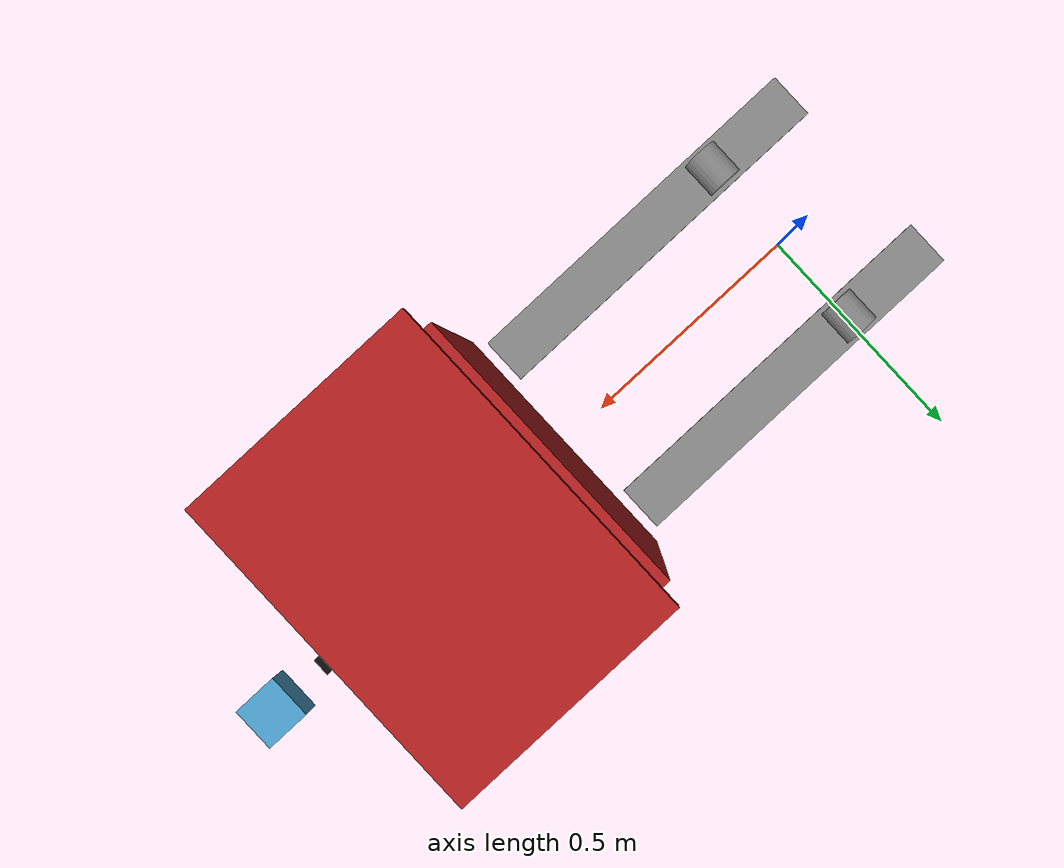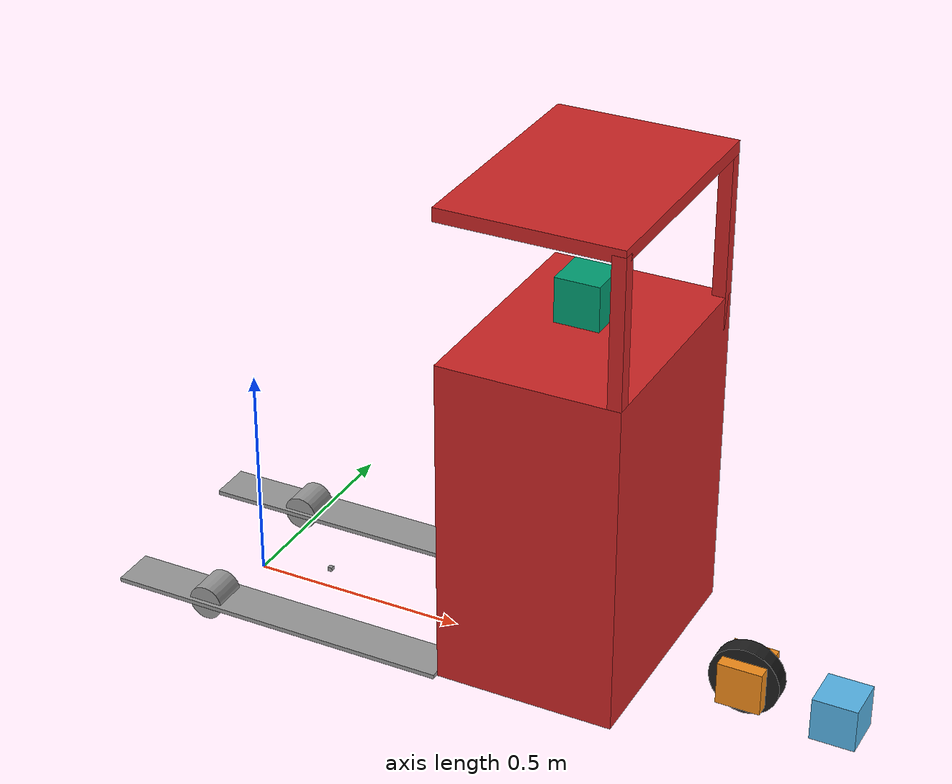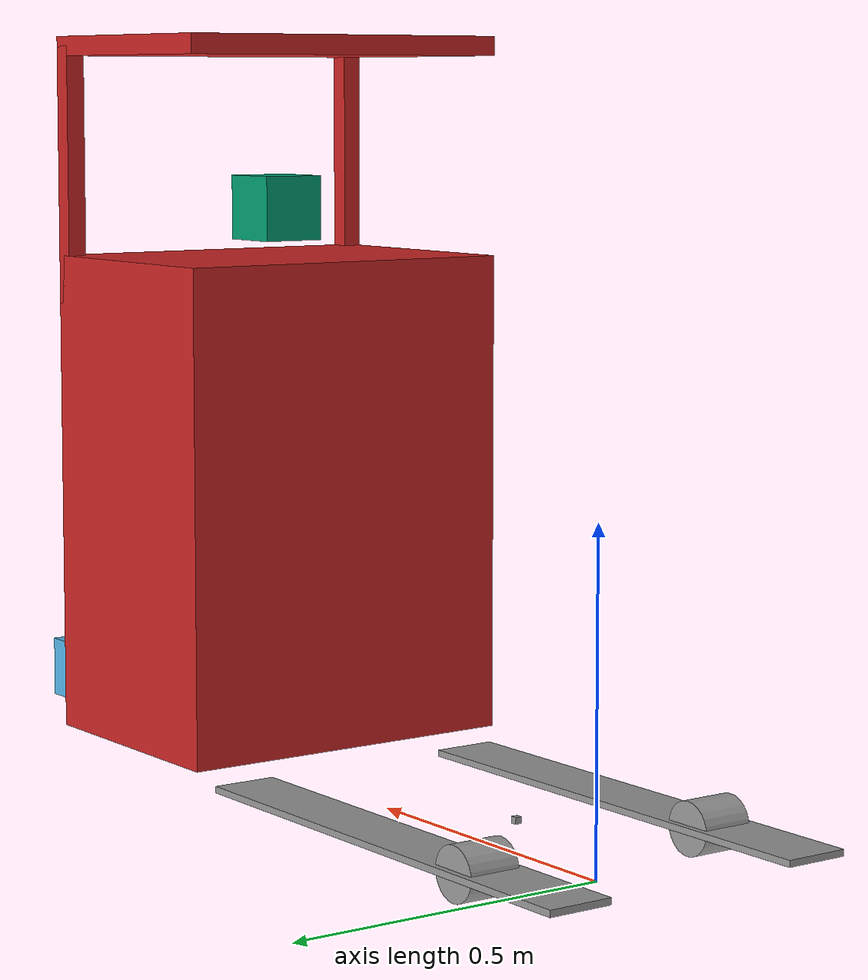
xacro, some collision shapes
<?xml version="1.0"?>
<robot name="cititruck" xmlns:xacro="http://ros.org/wiki/xacro">

    <xacro:arg name="tf_prefix" default="robot_xacro_default"/>
    <xacro:arg name="velodyne" default="false"/>
    <xacro:arg name="kinect2" default="false"/>
    <xacro:arg name="kinect1" default="false"/> <!-- deprecated -->

    <!-- Import all Gazebo-customization elements, including Gazebo colors -->
    <xacro:include filename="$(find cititruck_description)/urdf/cititruck.gazebo"/>

    <!-- Import Rviz colors -->
    <xacro:include filename="$(find cititruck_description)/urdf/materials.xacro"/>

    <xacro:property name="forks_pidP" value="2000"/>
    <xacro:property name="forks_pidI" value="0"/>
    <xacro:property name="forks_pidD" value="10"/>
    <xacro:property name="forks_low" value="0.08"/>
    <xacro:property name="forks_high" value="0.2"/>
    <xacro:property name="forks_maxeffort" value="1000"/>

    <!-- base_footprint is a fictitious link(frame) that is on the ground right below base_link origin, navigation stack dedpends on this frame and KDL needs a root link without any intertia -->
    <link name="base_footprint"/>
    <joint name="base_footprint_joint" type="fixed">
        <origin xyz="0 0 0.050" rpy="0 0 0"/>
        <child link="base_link"/>
        <parent link="base_footprint"/>
    </joint>

    <!-- Base Link -->
    <link name="base_link">
        <inertial>
            <mass value="20"/>
            <inertia ixx="1" ixy="0" ixz="0" iyy="1" iyz="0" izz="1"/>
            <origin/>
        </inertial>
        <collision>
            <origin xyz="0.8 0 0.1" rpy="0 0 0"/>
            <geometry>
                <box size="0.4 0.55 0.005"/>
            </geometry>
        </collision>

        <visual>
            <origin xyz="0.8 0 0.4" rpy="0 0 0"/>
            <geometry>
                <box size="0.4 0.55 0.75"/>
            </geometry>
            <material name="red"/>
        </visual>

        <!-- Top shelf -->
        <visual>
            <origin xyz="0.8 0 1.1" rpy="0 0 0" />
            <geometry>
                <box size="0.4 0.55 0.03" />
            </geometry>
            <material name="red"/>
        </visual>
        <visual>
            <origin xyz="0.985 0.26 0.9" rpy="0 0 0" />
            <geometry>
                <box size="0.03 0.03 0.4" />
            </geometry>
            <material name="red"/>
        </visual>
        <visual>
            <origin xyz="0.985 -0.26 0.9" rpy="0 0 0" />
            <geometry>
                <box size="0.03 0.03 0.4" />
            </geometry>
            <material name="red"/>
        </visual>

    </link>

    <!-- Forks -->

    <link name="left_fork">
        <inertial>
            <mass value="1"/>
            <origin xyz="0 0 0.0"/>
            <inertia ixx="0.01" ixy="0.0" ixz="0.0" iyy="0.01" iyz="0.0" izz="0.01"/>
        </inertial>
        <visual>
            <origin xyz="0 0 0.0" rpy="0 0 0"/>
            <geometry>
                <box size="0.8 0.1 0.01"/>
            </geometry>
            <material name="grey"/>
        </visual>
        <collision>
            <origin xyz="0 0 0.0" rpy="0 0 0"/>
            <geometry>
                <box size="0.8 0.1 0.01"/>
            </geometry>
            <contact_coefficients kd="10.0" kp="10.0" mu="1"/>
        </collision>
    </link>

    <link name="right_fork">
        <inertial>
            <mass value="1"/>
            <origin xyz="0 0 0.0"/>
            <inertia ixx="0.01" ixy="0.0" ixz="0.0" iyy="0.01" iyz="0.0" izz="0.01"/>
        </inertial>
        <visual>
            <origin xyz="0 0 0.0" rpy="0 0 0"/>
            <geometry>
                <box size="0.8 0.1 0.01"/>
            </geometry>
            <material name="grey"/>
        </visual>
        <collision>
            <origin xyz="0 0 0.0" rpy="0 0 0"/>
            <geometry>
                <box size="0.8 0.1 0.01"/>
            </geometry>
            <contact_coefficients kd="10.0" kp="10.0" mu="1"/>
        </collision>
    </link>

    <link name="base_fork">
        <inertial>
            <mass value="0.1"/>
            <origin xyz="0 0 0.0"/>
            <inertia ixx="0.01" ixy="0.0" ixz="0.0" iyy="0.01" iyz="0.0" izz="0.01"/>
        </inertial>
        <visual>
            <origin xyz="0 0 0.0" rpy="0 0 0"/>
            <geometry>
                <box size="0.01 0.01 0.01"/>
            </geometry>
            <material name="grey"/>
        </visual>
    </link>

    <!-- static joint connect the single prismatic joint with the forks... -->
    <joint name="left_fork_joint" type="fixed">
        <origin xyz="0 0.205 0.0" rpy="0 0 0"/>
        <child link="left_fork"/>
        <parent link="base_fork"/>
    </joint>
    <joint name="right_fork_joint" type="fixed">
        <origin xyz="0 -0.205 0.0" rpy="0 0 0"/>
        <child link="right_fork"/>
        <parent link="base_fork"/>
    </joint>
    <joint name="fork_joint" type="prismatic">
        <origin xyz="0.18 0.0 0.0" rpy="0 0 0"/>
        <parent link="base_link"/>
        <child link="base_fork"/>
        <axis xyz="0 0 1"/>
        <limit effort="1000" lower="-1" upper="1" velocity="100"/>
    </joint>

    <!-- Steering -->

    <link name="steer_link">
        <inertial>
            <mass value="0.01"/>
            <inertia ixx="0.001" ixy="0" ixz="0" iyy="0.001" iyz="0" izz="0.001"/>
            <origin/>
        </inertial>
        <visual>
            <origin xyz="0 0 0" rpy="0 0 0"/>
            <geometry>
                <box size="0.1 0.1 0.1"/>
            </geometry>
            <material name="orange"/>
        </visual>
    </link>

    <link name="sd_wheel_link">
        <inertial>
            <mass value="10"/>
            <inertia ixx="0.01" ixy="0" ixz="0" iyy="0.01" iyz="0" izz="0.01"/>
            <origin/>
        </inertial>
        <visual>
            <origin xyz="0 0 0" rpy="1.57 0 0"/>
            <geometry>
                <cylinder radius="0.08" length=".04"/>
            </geometry>
            <material name="black"/>
        </visual>
        <collision>
            <origin xyz="0 0 0" rpy="1.57 0 0"/>
            <geometry>
                <cylinder radius="0.08" length=".04"/>
            </geometry>
        </collision>
    </link>

    <joint name="base2steer_joint" type="revolute">
        <parent link="base_link"/>
        <child link="steer_link"/>
        <limit effort="10000.0" lower="-1.57" upper="1.57" velocity="100"/>
        <origin xyz="1.190 0 0.04" rpy="0 0 0"/>
        <axis xyz="0 0 1"/>
    </joint>

    <joint name="steer2sd_wheel_joint" type="continuous">
        <parent link="steer_link"/>
        <child link="sd_wheel_link"/>
        <limit effort="10000.0" velocity="100"/>
        <origin xyz="0 0 0" rpy="0 0 0"/>
        <axis xyz="0 1 0"/>
    </joint>

    <link name="fixed_left_wheel_link">
        <inertial>
            <mass value="0.1"/>
            <inertia ixx="0.01" ixy="0" ixz="0" iyy="0.01" iyz="0" izz="0.01"/>
            <origin/>
        </inertial>
        <visual>
            <origin xyz="0 0 0" rpy="1.57 0 0"/>
            <geometry>
                <cylinder radius="0.04" length=".08"/>
            </geometry>
            <material name="gray"/>
        </visual>
        <collision>
            <origin xyz="0 0 0" rpy="1.57 0 0"/>
            <geometry>
                <cylinder radius="0.04" length=".08"/>
            </geometry>
        </collision>
    </link>

    <joint name="base2fixed_left_wheel_joint" type="continuous">
        <parent link="base_link"/>
        <child link="fixed_left_wheel_link"/>
        <origin xyz="0 0.205 0" rpy="0 0 0"/>
        <axis xyz="0 1 0"/>
    </joint>

    <link name="fixed_right_wheel_link">
        <inertial>
            <mass value="0.1"/>
            <inertia ixx="0.01" ixy="0" ixz="0" iyy="0.01" iyz="0" izz="0.01"/>
            <origin/>
        </inertial>
        <visual>
            <origin xyz="0 0 0" rpy="1.57 0 0"/>
            <geometry>
                <cylinder radius="0.04" length=".08"/>
            </geometry>
            <material name="gray"/>
        </visual>
        <collision>
            <origin xyz="0 0 0" rpy="1.57 0 0"/>
            <geometry>
                <cylinder radius="0.04" length=".08"/>
            </geometry>
        </collision>
    </link>

    <joint name="base2fixed_right_wheel_joint" type="continuous">
        <parent link="base_link"/>
        <child link="fixed_right_wheel_link"/>
        <origin xyz="0 -0.205 0" rpy="0 0 0"/>
        <axis xyz="0 1 0"/>
    </joint>

    <!-- SENSORS START HERE -->

    <!-- SICK laser -->
    <link name="safety_laser_link">
        <collision>
            <origin xyz="0 0 0" rpy="0 0 0"/>
            <geometry>
                <box size="0.1 0.1 0.1"/>
            </geometry>
        </collision>
        <visual>
            <origin xyz="0 0 0" rpy="0 0 0"/>
            <geometry>
                <mesh filename="package://cititruck_description/meshes/sick_s300_laser.dae"/>
            </geometry>
        </visual>
        <inertial>
            <mass value="1e-5"/>
            <origin xyz="0 0 0" rpy="0 0 0"/>
            <inertia ixx="1e-6" ixy="0" ixz="0" iyy="1e-6" iyz="0" izz="1e-6"/>
        </inertial>
    </link>

    <joint name="safety_laser_joint" type="fixed">
        <axis xyz="0 1 0"/>
        <origin xyz="1.4 0 0.02" rpy="3.14159 0 0"/>
        <parent link="base_link"/>
        <child link="safety_laser_link"/>
    </joint>

    <!-- LS2000 navigation/localization laser -->
    <link name="nav_laser_link">
        <collision>
            <origin xyz="0 0 0" rpy="0 0 0"/>
            <geometry>
                <box size="0.1 0.1 0.1"/>
            </geometry>
        </collision>

        <visual>
            <origin xyz="0 0 0" rpy="0 0 0"/>
            <geometry>
                <mesh filename="package://cititruck_description/meshes/ls2000_laser.dae" scale="2 2 2"/>
            </geometry>
        </visual>

        <inertial>
            <mass value="1e-5" />
            <origin xyz="0 0 0" rpy="0 0 0"/>
            <inertia ixx="1e-6" ixy="0" ixz="0" iyy="1e-6" iyz="0" izz="1e-6" />
        </inertial>
    </link>

    <joint name="nav_laser_joint" type="fixed">
        <origin xyz="0.8 0 0.85" rpy="0 0 0"/>
        <parent link="base_link"/>
        <child link="nav_laser_link"/>
    </joint>

    <!-- Velodyne VLP16 -->
    <xacro:if value="$(arg velodyne)">
      <xacro:include filename="$(find velodyne_description)/urdf/VLP-16.urdf.xacro"/>
      <VLP-16 parent="base_link" prefix="$(arg tf_prefix)" name="velodyne" topic="/velodyne_points" hz="10" samples="440">
          <origin xyz="0.8 0 0.95" rpy="0 0 0" />
      </VLP-16>
    </xacro:if>

    <!-- Kinect v2 -->
    <xacro:if value="$(arg kinect2)">
      <xacro:include filename="$(find kinect2_description)/urdf/kinect2/kinect2.xacro"/>
      <kinect2_sensor parent="base_link" prefix="$(arg tf_prefix)" name="kinect2" cam_px="0.98" cam_py="0" cam_pz="1.15" cam_or="0" cam_op="0" cam_oy="0"/>
    </xacro:if>

    <!-- Old Kinect (deprecated, only used for pallet detection?) -->
    <xacro:if value="$(arg kinect1)">
      <link name="kinect_link">
          <collision>
              <origin xyz="0 0 0" rpy="0 0 0"/>
              <geometry>
                  <box size="0.1 0.1 0.1"/>
              </geometry>
          </collision>
          <visual>
              <origin xyz="0 0 0" rpy="0 0 0"/>
              <geometry>
                  <box size="0.001 0.001 0.001"/>
              </geometry>
          </visual>
          <inertial>
              <mass value="1e-5"/>
              <origin xyz="0 0 0" rpy="0 0 0"/>
              <inertia ixx="1e-6" ixy="0" ixz="0" iyy="1e-6" iyz="0" izz="1e-6"/>
          </inertial>
      </link>

      <joint name="kinect_joint" type="fixed">
          <axis xyz="0 1 0"/>
          <origin xyz="0.5 0 0.7" rpy="0 2.5 0"/>
          <parent link="base_link"/>
          <child link="kinect_link"/>
      </joint>
    </xacro:if>

</robot>
